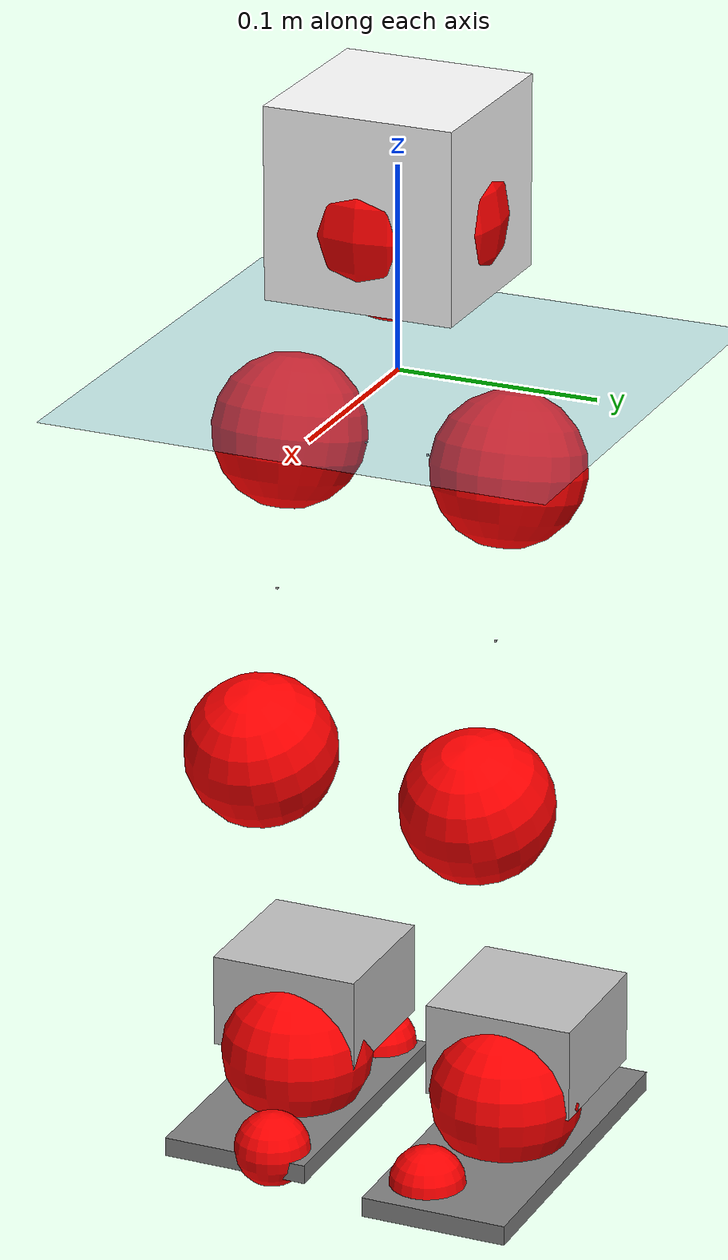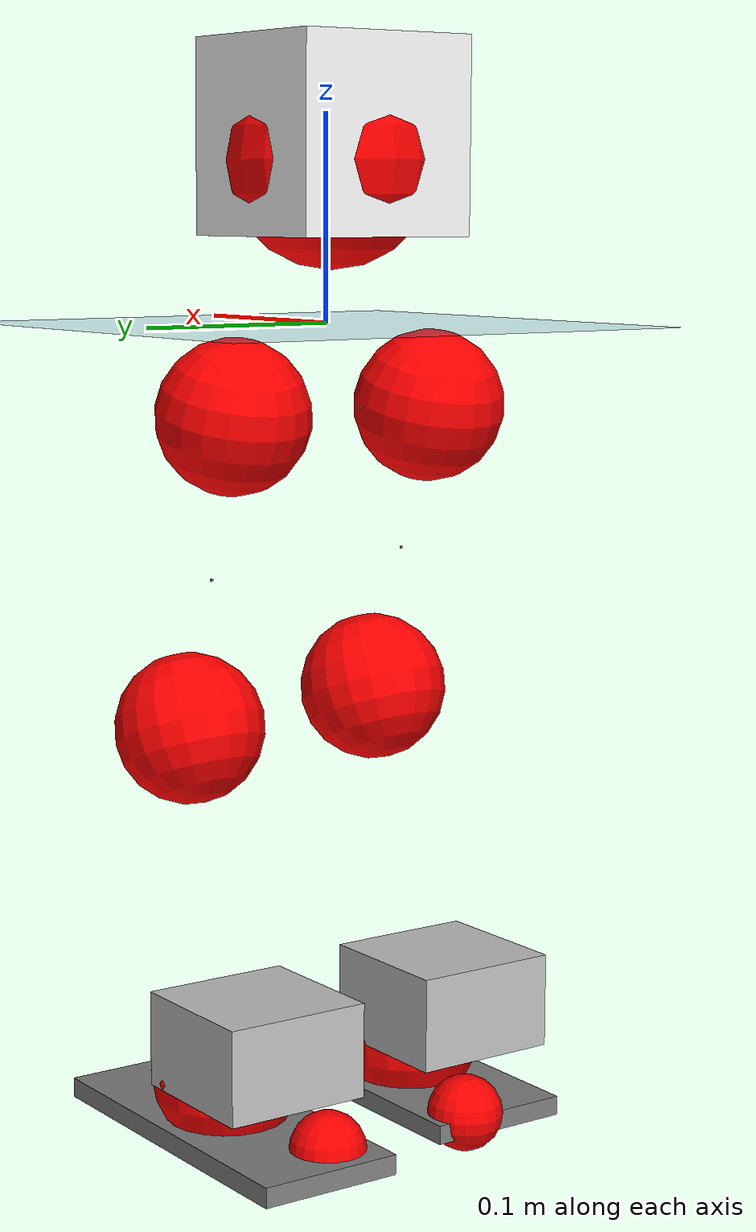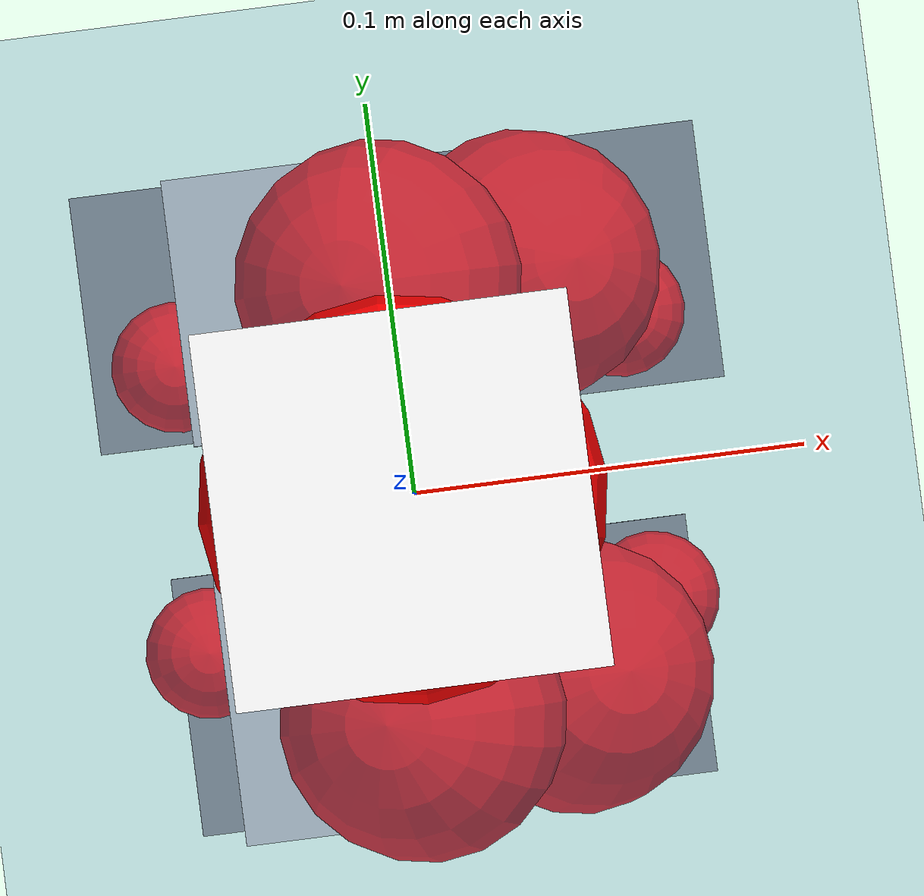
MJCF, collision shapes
<mujoco model="pi_12dof_release_v1">
  <compiler angle="radian" assetdir="assets" balanceinertia="true" inertiafromgeom="false"/>

  <option timestep="0.005" density="1.2" viscosity="2e-05"/>

  <size nkey="1"/>

  <visual>
    <quality shadowsize="8192"/>
    <map shadowclip="0.5"/>
  </visual>

  <default>
    <default class="/">
      <joint armature="0.01" damping="0.01" frictionloss="0.01"/>
      <geom contype="0" conaffinity="0" group="1" solref="-1000 -80"/>
      <site size="0.01 0.005 0.005" group="5"/>
      <general forcelimited="true" biastype="affine" gainprm="20" biasprm="0 -20 -0.5"/>
      <default class="foot">
        <geom size="0.0845 0.036 0.005" type="box" condim="6" group="4" priority="1" friction="0.9 0.2 0.2" solimp="0.015 1 0.005"/>
      </default>
      <default class="reward_collision_sphere">
        <geom group="5" rgba="1 0 0 1"/>
      </default>
    </default>
  </default>

  <asset>
    <texture type="skybox" colorspace="auto" name="//unnamed_texture_0" builtin="gradient" rgb1="0.95 0.95 0.95" rgb2="0.95 0.95 0.95" width="100" height="600"/>
    <texture type="2d" colorspace="auto" name="texplane" builtin="checker" rgb1="0.345 0.575 0.748" rgb2="0.345 0.575 0.748" markrgb="1 1 1" width="512" height="512"/>
    <material name="MatPlane" class="/" texture="texplane" texuniform="true" texrepeat="2 2" specular="0.9"/>
    <mesh name="baselink_1" class="/" file="baselink_1.STL"/>
    <mesh name="r_hip_pitch_link" class="/" file="r_hip_pitch_link.STL"/>
    <mesh name="r_hip_roll_link" class="/" file="r_hip_roll_link.STL"/>
    <mesh name="r_thigh_link" class="/" file="r_thigh_link.STL"/>
    <mesh name="r_calf_link" class="/" file="r_calf_link.STL"/>
    <mesh name="r_ankle_pitch_link" class="/" file="r_ankle_pitch_link.STL"/>
    <mesh name="r_ankle_roll_link" class="/" file="r_ankle_roll_link.STL"/>
    <mesh name="l_hip_pitch_link" class="/" file="l_hip_pitch_link.STL"/>
    <mesh name="l_hip_roll_link" class="/" file="l_hip_roll_link.STL"/>
    <mesh name="l_thigh_link" class="/" file="l_thigh_link.STL"/>
    <mesh name="l_calf_link" class="/" file="l_calf_link.STL"/>
    <mesh name="l_ankle_pitch_link" class="/" file="l_ankle_pitch_link.STL"/>
    <mesh name="l_ankle_roll_link" class="/" file="l_ankle_roll_link.STL"/>
  </asset>

  <worldbody>
    <geom name="floor" class="/" size="100 100 0.125" type="plane" group="0" material="MatPlane"/>
    <light name="toplight_shadow" class="/" pos="0 0 5" dir="0.0990148 0.0990148 -0.990148" type="directional" ambient="0.04 0.04 0.04" diffuse="0.55 0.55 0.55" specular="0.12 0.12 0.12"/>
    <light name="toplight_fill" class="/" pos="0 0 5" dir="0.0990148 0.0990148 -0.990148" type="directional" castshadow="false" ambient="0.04 0.04 0.04" diffuse="0.3 0.3 0.3" specular="0.08 0.08 0.08"/>
    <body name="trunk" pos="-0.00282454 -0.000991862 -0.00220864" quat="0.999999 0.000262253 -0.00132023 -0.000137381">
      <inertial pos="-0.000154899 0.00154193 0.0445039" quat="0.692335 0.00165661 -0.000891303 0.721574" mass="1.76643" diaginertia="0.00731569 0.00189694 0.007926"/>
      <joint name="//unnamed_joint_0" type="free"/>
      <geom name="//unnamed_geom_1" class="/" type="mesh" density="0" rgba="1 1 1 1" mesh="baselink_1"/>
      <geom name="//unnamed_geom_2" class="/" size="0.0467505 0.0467505 0.0467505" pos="0 0 0.0906856" type="box" rgba="1 1 1 1"/>
      <geom name="//unnamed_geom_3" class="reward_collision_sphere" size="0.0514255" pos="0 0 0.0793499"/>
      <site name="imu" class="/" pos="0.0122323 -0.00716704 -0.00565121" size="0.00935009"/>
      <camera name="track" class="/" pos="0 -1.46396 0" quat="0.707107 0.707107 0 0" mode="trackcom"/>
      <camera name="ego_camera" class="/" pos="0.0704609 0 0.204043" quat="-0.5 -0.5 0.5 0.5"/>
      <body name="r_hip_pitch_link" pos="-0.00114947 -0.016879 -0.0385261" quat="0.992148 -0.000698137 -0.125068 0.000103693">
        <inertial pos="-0.00144263 -0.0406461 0.000121395" quat="-0.0160771 0.704998 -0.0421307 0.707774" mass="0.311212" diaginertia="8.17262e-05 2.12404e-05 0.000164286"/>
        <joint name="r_hip_pitch_joint" class="/" pos="0 0 0" axis="0.000748718 -1 -0.000651945" range="-1.74442 1.22663" armature="0.00824502" damping="0.00698885" frictionloss="0.00950213"/>
        <geom name="//unnamed_geom_4" class="/" type="mesh" density="0" rgba="0.75294 0.75294 0.75294 1" mesh="r_hip_pitch_link"/>
        <geom name="//unnamed_geom_5" class="/" size="0.000467505 0.000467505 0.000467505" type="box" rgba="0.75294 0.75294 0.75294 1"/>
        <body name="r_hip_roll_link" pos="-0.00157168 -0.0403228 -1.60583e-05" quat="1 5.52979e-05 0.000163785 0.000173009">
          <inertial pos="-0.00148353 -0.00230692 -0.0705537" quat="0.704641 -0.0783474 -0.0828019 0.700348" mass="0.31851" diaginertia="0.000240512 5.63067e-05 0.000236919"/>
          <joint name="r_hip_roll_joint" class="/" pos="0 0 0" axis="-0.999907 0.012091 0.00637117" range="-0.143202 0.545104" armature="0.00983271" damping="0.00659136" frictionloss="0.0089773"/>
          <geom name="//unnamed_geom_6" class="/" type="mesh" density="0" rgba="0.75294 0.75294 0.75294 1" mesh="r_hip_roll_link"/>
          <geom name="//unnamed_geom_7" class="/" size="0.000467505 0.000467505 0.000467505" type="box" rgba="0.75294 0.75294 0.75294 1"/>
          <geom name="//unnamed_geom_8" class="reward_collision_sphere" size="0.0374004"/>
          <body name="r_thigh_link" pos="0.00084833 0.00212256 -0.0754139" quat="1 -0.0003161 -0.000277513 -0.000351198">
            <inertial pos="0.000150507 -0.00186615 -0.0510517" quat="0.737867 0.674946 -0.000217894 -3.61113e-05" mass="0.095162" diaginertia="9.50384e-05 2.00326e-05 0.000108534"/>
            <joint name="r_thigh_joint" class="/" pos="0 0 0" axis="-0.0145579 -0.00612641 -0.999875" stiffness="0.00708743" range="-0.293821 0.620844" armature="0.00899178" damping="0" frictionloss="0.00869907"/>
            <geom name="//unnamed_geom_9" class="/" type="mesh" density="0" rgba="0.75294 0.75294 0.75294 1" mesh="r_thigh_link"/>
            <geom name="//unnamed_geom_10" class="/" size="0.000467505 0.000467505 0.000467505" type="box" rgba="0.75294 0.75294 0.75294 1"/>
            <body name="r_calf_link" pos="0.00269101 0.00140809 -0.0776175" quat="0.947646 9.2929e-07 0.319322 -1.10479e-07">
              <inertial pos="-0.000947222 -0.00345748 -0.0787863" quat="0.999911 -0.0132931 -0.0012141 6.27603e-05" mass="0.682973" diaginertia="0.00256797 0.000769514 0.000332239"/>
              <joint name="r_calf_joint" class="/" pos="0 0 0" axis="-0.00105587 -0.999998 0.00175113" range="-1.60402 0.648262" armature="0.00792912" damping="0.00352012" frictionloss="0.00926172"/>
              <geom name="//unnamed_geom_11" class="/" type="mesh" density="0" rgba="0.75294 0.75294 0.75294 1" mesh="r_calf_link"/>
              <geom name="//unnamed_geom_12" class="/" size="0.000467505 0.000467505 0.000467505" type="box" rgba="0.75294 0.75294 0.75294 1"/>
              <geom name="//unnamed_geom_13" class="reward_collision_sphere" size="0.0374004"/>
              <body name="r_ankle_pitch_link" pos="0.00249124 -0.000240292 -0.16105" quat="0.980102 0.000139012 -0.198495 0.000412724">
                <inertial pos="0.00384991 0.00266862 -0.00216241" quat="7.88292e-05 0.702816 -0.00305499 0.711365" mass="0.14878" diaginertia="0.000224479 4.77785e-05 0.000229945"/>
                <joint name="r_ankle_pitch_joint" class="/" pos="0 0 0" axis="-0.00278964 -0.999988 -0.00402682" range="-1.29809 0.534921" armature="0.00944765" damping="0.00809506" frictionloss="0.0105517"/>
                <geom name="//unnamed_geom_14" class="/" type="mesh" density="0" rgba="0.75294 0.75294 0.75294 1" mesh="r_ankle_pitch_link"/>
                <geom name="//unnamed_geom_15" class="/" size="0.0364654 0.0374004 0.0233752" type="box" rgba="0.75294 0.75294 0.75294 1"/>
                <body name="r_ankle_roll_link" pos="0.0717017 0.00193718 -0.00102407" quat="1 8.3587e-05 0.00036022 0.000264293">
                  <inertial pos="-0.0228833 -0.000352491 -0.0151617" quat="0.562523 0.439177 0.4272 0.55515" mass="0.402683" diaginertia="0.000831392 0.000217406 0.000506364"/>
                  <joint name="r_ankle_roll_joint" class="/" pos="0 0 0" axis="-0.999926 0.00689421 -0.0100104" range="-0.0950997 0.0996968" armature="0.00831855" damping="0.0215116" frictionloss="0.00821089"/>
                  <geom name="//unnamed_geom_16" class="/" type="mesh" density="0" rgba="0.75294 0.75294 0.75294 1" mesh="r_ankle_roll_link"/>
                  <geom name="//unnamed_geom_17" class="/" type="mesh" rgba="0.75294 0.75294 0.75294 1" mesh="r_ankle_roll_link"/>
                  <geom name="right_foot" class="foot" size="0.0736821 0.036782 0.00472769" pos="-0.0479134 0 -0.0498771"/>
                  <geom name="//unnamed_geom_19" class="reward_collision_sphere" size="0.0374004" pos="-0.0469739 0 -0.0226714"/>
                  <geom name="//unnamed_geom_20" class="reward_collision_sphere" size="0.0187002" pos="0.0140922 0.0146396 -0.0453428"/>
                  <geom name="//unnamed_geom_21" class="reward_collision_sphere" size="0.0187002" pos="-0.112737 0.0146396 -0.0453428"/>
                  <site name="right_foot" class="foot" pos="-0.0479134 0 -0.0498771" size="0.00935009"/>
                </body>
              </body>
            </body>
          </body>
        </body>
      </body>
      <body name="l_hip_pitch_link" pos="3.61582e-05 0.0150113 -0.0393396" quat="0.992154 0.00015393 -0.125022 0.00013157">
        <inertial pos="0.000886421 0.0406063 -0.00258151" quat="-0.0389944 0.702498 0.0269571 0.710105" mass="0.33225" diaginertia="9.82646e-05 2.16023e-05 0.000188833"/>
        <joint name="l_hip_pitch_joint" class="/" pos="0 0 0" axis="-0.00618165 0.999952 0.00759519" range="-1.19028 1.73285" armature="0.0107493" damping="0.00498815" frictionloss="0.00979129"/>
        <geom name="//unnamed_geom_22" class="/" type="mesh" density="0" rgba="0.75294 0.75294 0.75294 1" mesh="l_hip_pitch_link"/>
        <geom name="//unnamed_geom_23" class="/" size="0.000467505 0.000467505 0.000467505" type="box" rgba="0.75294 0.75294 0.75294 1"/>
        <body name="l_hip_roll_link" pos="-0.000246538 0.0409576 -0.00056277" quat="1 7.28263e-06 0.000339632 -0.000353655">
          <inertial pos="-0.00401006 -0.000834773 -0.0704142" quat="0.691441 -0.0705695 -0.0800741 0.714505" mass="0.326931" diaginertia="0.000242166 5.95254e-05 0.000238216"/>
          <joint name="l_hip_roll_joint" class="/" pos="0 0 0" axis="-0.999995 -0.000575758 0.00309699" stiffness="0.00255851" range="-0.542336 0.172657" armature="0.00831633" damping="0.00168118" frictionloss="0.00940772"/>
          <geom name="//unnamed_geom_24" class="/" type="mesh" density="0" rgba="0.75294 0.75294 0.75294 1" mesh="l_hip_roll_link"/>
          <geom name="//unnamed_geom_25" class="/" size="0.000467505 0.000467505 0.000467505" type="box" rgba="0.75294 0.75294 0.75294 1"/>
          <geom name="//unnamed_geom_26" class="reward_collision_sphere" size="0.0374004"/>
          <body name="l_thigh_link" pos="-0.00272882 0.00139077 -0.0814768" quat="1 -6.35843e-05 0.000146049 0.000178917">
            <inertial pos="0.00268899 -0.00405087 -0.0510535" quat="0.678927 0.734092 -0.00985289 0.00842591" mass="0.0892207" diaginertia="9.18759e-05 2.03399e-05 0.00010748"/>
            <joint name="l_thigh_joint" class="/" pos="0 0 0" axis="0.000445045 -0.000131171 -1" range="-0.592588 0.252107" armature="0.00933425" damping="0.00155692" frictionloss="0.00984299"/>
            <geom name="//unnamed_geom_27" class="/" type="mesh" density="0" rgba="0.75294 0.75294 0.75294 1" mesh="l_thigh_link"/>
            <geom name="//unnamed_geom_28" class="/" size="0.000467505 0.000467505 0.000467505" type="box" rgba="0.75294 0.75294 0.75294 1"/>
            <body name="l_calf_link" pos="0.00136242 -2.46932e-05 -0.078756" quat="0.947562 -0.000263646 0.319572 -0.000144291">
              <inertial pos="0.000658743 0.00476629 -0.0822138" quat="0.999986 0.0029244 -0.000778656 0.00441905" mass="0.665121" diaginertia="0.00254668 0.000724851 0.000319422"/>
              <joint name="l_calf_joint" class="/" pos="0 0 0" axis="-0.000938324 0.999999 -0.00141596" range="-0.61735 1.6997" armature="0.00946261" damping="0.00830621" frictionloss="0.00977577"/>
              <geom name="//unnamed_geom_29" class="/" type="mesh" density="0" rgba="0.75294 0.75294 0.75294 1" mesh="l_calf_link"/>
              <geom name="//unnamed_geom_30" class="/" size="0.000467505 0.000467505 0.000467505" type="box" rgba="0.75294 0.75294 0.75294 1"/>
              <geom name="//unnamed_geom_31" class="reward_collision_sphere" size="0.0374004"/>
              <body name="l_ankle_pitch_link" pos="0.000734633 0.00068815 -0.15674" quat="0.980117 0.000189409 -0.198422 3.55083e-05">
                <inertial pos="0.00183908 0.00215379 0.00026198" quat="-0.00148844 0.708014 0.00289607 0.706191" mass="0.134151" diaginertia="0.000222684 4.55983e-05 0.000224063"/>
                <joint name="l_ankle_pitch_joint" class="/" pos="0 0 0" axis="0.00365847 0.999993 0.000260694" stiffness="0.000134783" range="-0.55158 1.31717" armature="0.00815237" damping="0.0132477" frictionloss="0.00920234"/>
                <geom name="//unnamed_geom_32" class="/" type="mesh" density="0" rgba="0.75294 0.75294 0.75294 1" mesh="l_ankle_pitch_link"/>
                <geom name="//unnamed_geom_33" class="/" size="0.0364654 0.0374004 0.0233752" type="box" rgba="0.75294 0.75294 0.75294 1"/>
                <body name="l_ankle_roll_link" pos="0.0729397 0.000408561 0.00193519" quat="1 0.00011564 0.000326214 -8.47374e-05">
                  <inertial pos="-0.0223103 -0.00015075 -0.0168001" quat="0.558001 0.429167 0.433098 0.562917" mass="0.39482" diaginertia="0.000803683 0.000211729 0.000507128"/>
                  <joint name="l_ankle_roll_joint" class="/" pos="0 0 0" axis="-1 0.000659034 -0.000697858" range="-0.139826 0.15099" armature="0.0107249" damping="0.00977188" frictionloss="0.00934814"/>
                  <geom name="//unnamed_geom_34" class="/" type="mesh" density="0" rgba="0.75294 0.75294 0.75294 1" mesh="l_ankle_roll_link"/>
                  <geom name="//unnamed_geom_35" class="/" type="mesh" rgba="0.75294 0.75294 0.75294 1" mesh="l_ankle_roll_link"/>
                  <geom name="left_foot" class="foot" size="0.0893081 0.0367194 0.00493194" pos="-0.0479134 0 -0.0498771"/>
                  <geom name="//unnamed_geom_37" class="reward_collision_sphere" size="0.0374004" pos="-0.0469739 0 -0.0226714"/>
                  <geom name="//unnamed_geom_38" class="reward_collision_sphere" size="0.0187002" pos="0.0140922 -0.0146396 -0.0453428"/>
                  <geom name="//unnamed_geom_39" class="reward_collision_sphere" size="0.0187002" pos="-0.112737 -0.0146396 -0.0453428"/>
                  <site name="left_foot" class="foot" pos="-0.0479134 0 -0.0498771" size="0.00935009"/>
                </body>
              </body>
            </body>
          </body>
        </body>
      </body>
    </body>
  </worldbody>

  <contact>
    <pair class="/" geom1="floor" geom2="right_foot" name="//unnamed_contact_1"/>
    <pair class="/" geom1="floor" geom2="left_foot" name="//unnamed_contact_0"/>
  </contact>

  <actuator>
    <general name="r_hip_pitch_joint" class="/" joint="r_hip_pitch_joint" forcerange="-19.6147 19.6147" gainprm="18.535" biasprm="0 -18.535 -0.445472"/>
    <general name="r_hip_roll_joint" class="/" joint="r_hip_roll_joint" forcerange="-17.8122 17.8122" gainprm="18.535" biasprm="0 -18.535 -0.445472"/>
    <general name="r_thigh_joint" class="/" joint="r_thigh_joint" forcerange="-21.412 21.412" gainprm="18.535" biasprm="0 -18.535 -0.445472"/>
    <general name="r_calf_joint" class="/" joint="r_calf_joint" forcerange="-19.0088 19.0088" gainprm="18.535" biasprm="0 -18.535 -0.445472"/>
    <general name="r_ankle_pitch_joint" class="/" joint="r_ankle_pitch_joint" forcerange="-20.4629 20.4629" gainprm="18.535" biasprm="0 -18.535 -0.445472"/>
    <general name="r_ankle_roll_joint" class="/" joint="r_ankle_roll_joint" forcerange="-21.3622 21.3622" gainprm="18.535" biasprm="0 -18.535 -0.445472"/>
    <general name="l_hip_pitch_joint" class="/" joint="l_hip_pitch_joint" forcerange="-19.1478 19.1478" gainprm="18.535" biasprm="0 -18.535 -0.445472"/>
    <general name="l_hip_roll_joint" class="/" joint="l_hip_roll_joint" forcerange="-21.6102 21.6102" gainprm="18.535" biasprm="0 -18.535 -0.445472"/>
    <general name="l_thigh_joint" class="/" joint="l_thigh_joint" forcerange="-17.9035 17.9035" gainprm="18.535" biasprm="0 -18.535 -0.445472"/>
    <general name="l_calf_joint" class="/" joint="l_calf_joint" forcerange="-18.8447 18.8447" gainprm="18.535" biasprm="0 -18.535 -0.445472"/>
    <general name="l_ankle_pitch_joint" class="/" joint="l_ankle_pitch_joint" forcerange="-21.5391 21.5391" gainprm="18.535" biasprm="0 -18.535 -0.445472"/>
    <general name="l_ankle_roll_joint" class="/" joint="l_ankle_roll_joint" forcerange="-20.5432 20.5432" gainprm="18.535" biasprm="0 -18.535 -0.445472"/>
  </actuator>

  <sensor>
    <gyro site="imu" name="imu_angular_velocity"/>
    <velocimeter site="imu" name="imu_linear_velocity"/>
    <framelinvel objtype="site" objname="left_foot" name="left_foot_global_linear_velocity"/>
    <framelinvel objtype="site" objname="right_foot" name="right_foot_global_linear_velocity"/>
  </sensor>

  <keyframe>
    <key name="home" qpos="0 0 0.291 1 0 0 0 0.4 0 0 -0.8 0.4 0 -0.4 0 0 0.8 -0.4 0"/>
  </keyframe>
</mujoco>
